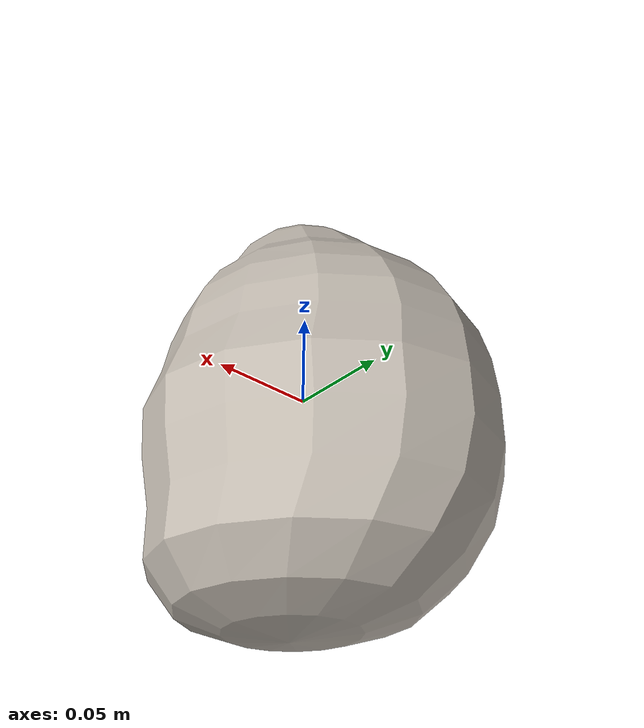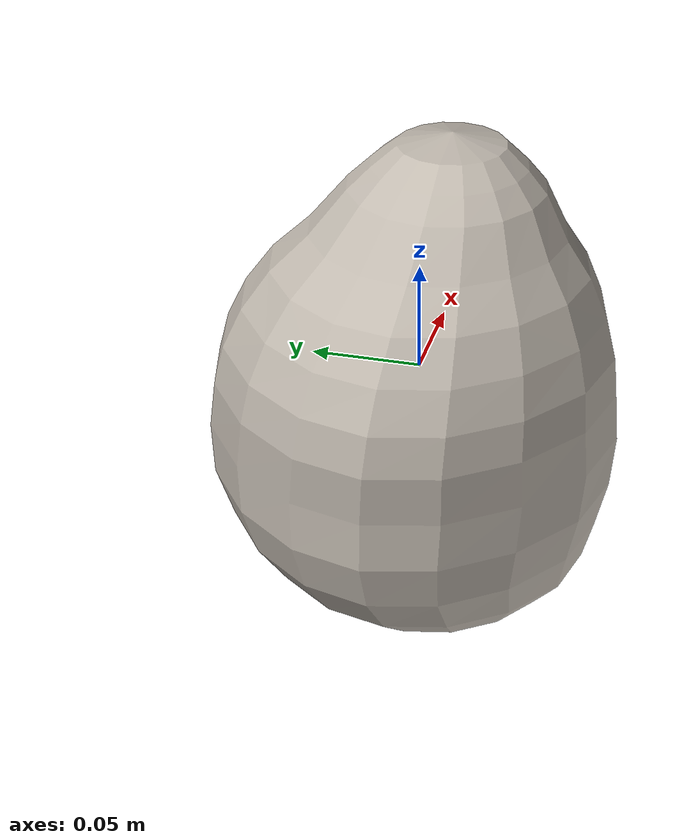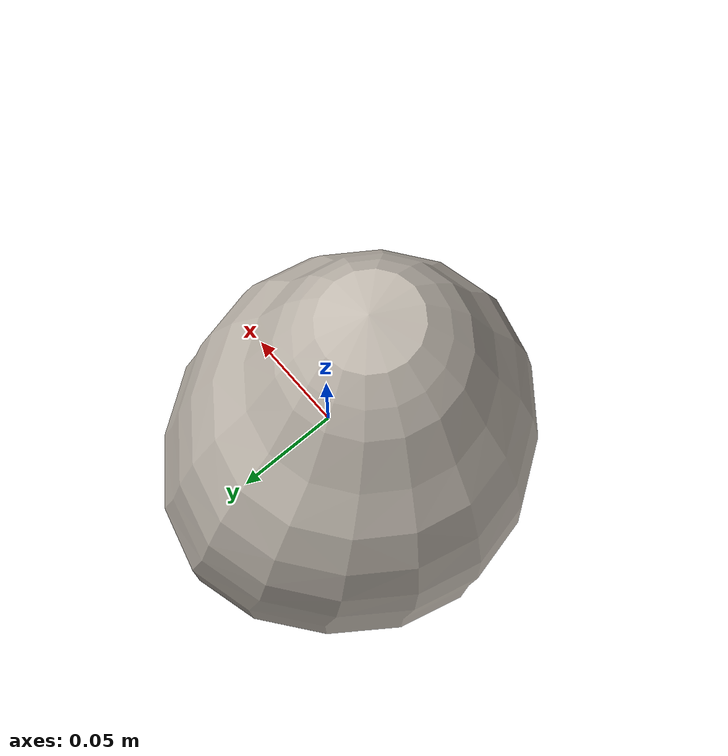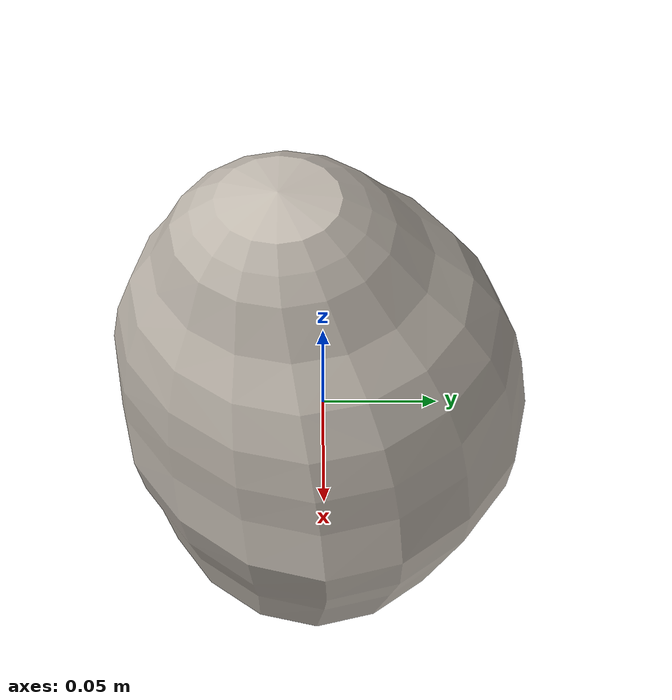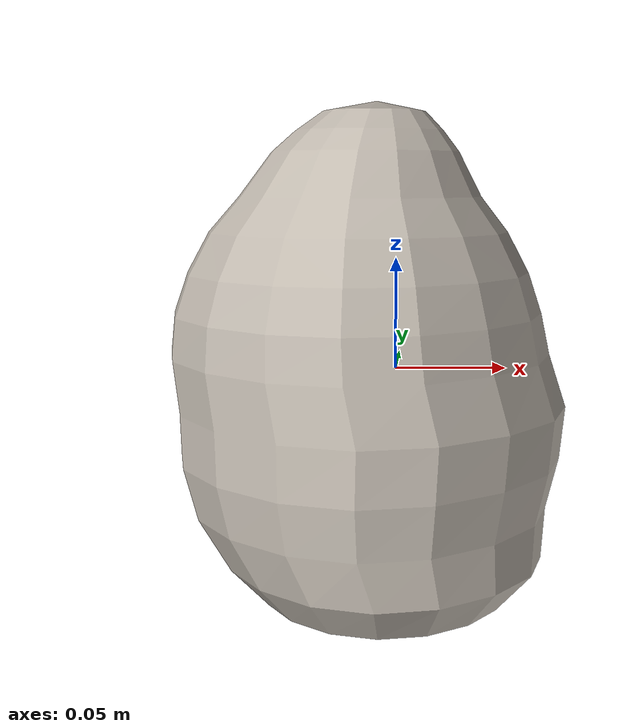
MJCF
<mujoco model="Lettuce_12">
  <compiler autolimits="true" boundmass="0.01" angle="radian"/>
  <default>
    <default class="/">
      <default class="__VISUAL_MJT__">
        <geom contype="0" conaffinity="0" group="0"/>
      </default>
      <default class="__STRUCTURAL_MJT__">
        <geom contype="8" conaffinity="15" group="4" friction="0.90000000000000002 0.90000000000000002 0.001" solref="0.025000000000000001 1" solimp="0.998 0.998 0.001"/>
      </default>
      <default class="__DYNAMIC_MJT__">
        <geom contype="1" conaffinity="15" group="4" friction="0.90000000000000002 0.90000000000000002 0.001" solref="0.025000000000000001 1" solimp="0.998 0.998 0.001"/>
      </default>
    </default>
  </default>
  <asset>
    <texture name="Lettuce2_Mat" type="2d" file="Lettuce2_AlbedoTransparency.png"/>
    <material name="material_Lettuce2_Mat" class="/" texture="Lettuce2_Mat" specular="0.5" shininess="0.5" rgba="1 1 1 1"/>
    <mesh name="Lettuce_12_lettuce_b2" class="/" file="Lettuce_12_lettuce_b2/Lettuce_12_lettuce_b2.obj" scale="1 1 1"/>
  </asset>
  <worldbody>
    <body name="Lettuce_12">
      <joint name="Lettuce_12_free" class="/" type="free" pos="0 0 0" axis="0 0 1" stiffness="0" range="0 0" armature="0" damping="0.10000000000000001" frictionloss="0"/>
      <body name="Lettuce_12_lettuce_b2" pos="-0.0064999999999999997 -0.01197 0.0015" quat="1 0 0 0">
        <geom name="Lettuce_12_lettuce_b2" class="__VISUAL_MJT__" type="mesh" material="material_Lettuce2_Mat" shellinertia="true" mesh="Lettuce_12_lettuce_b2"/>
        <geom name="Lettuce_12_PrimitiveCollider_0" class="__DYNAMIC_MJT__" type="capsule" size="0.091537952423095703 0.015825182199478149" rgba="0 1 0 1" pos="-0.0064969062805175781 0.011969942599534988 -0.014759238809347153" quat="0.99999999999891198 1.4751396607739272e-06 0 0"/>
        <geom name="Lettuce_12_PrimitiveCollider_1" class="__DYNAMIC_MJT__" type="capsule" size="0.054182529449462891 0.0097159966826438904" rgba="0 1 0 1" pos="-0.0027647621463984251 -0.0012833857908844948 0.055215582251548767" quat="0.99999999999891198 1.4751396607739272e-06 0 0"/>
      </body>
    </body>
  </worldbody>
</mujoco>
